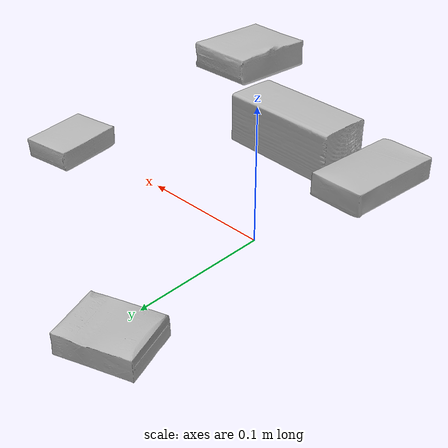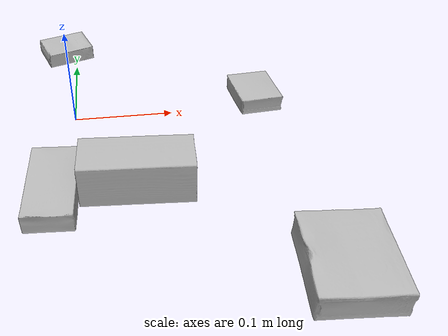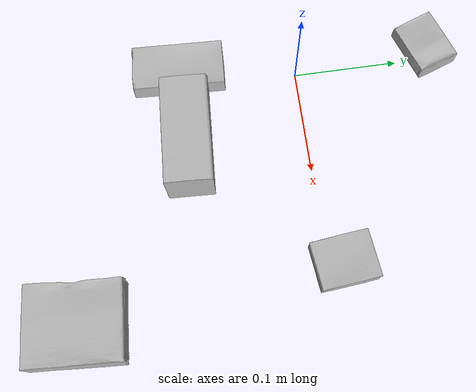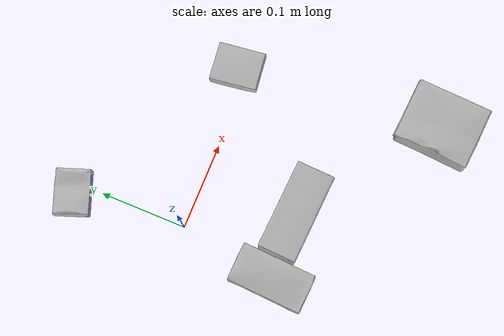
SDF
<sdf version="1.4">
  <world name="default">
    <light name="light1" type="point">
      <pose>0 0 1 0 0 0</pose>
      <diffuse>3 3 3 1</diffuse>
      <specular>3 3 3 1</specular>
    </light>
    <light name="light2" type="point">
      <pose>0 0.5 2 0 0 0</pose>
      <diffuse>1 1 1 1</diffuse>
      <specular>1 1 1 1</specular>
    </light>
    <light name="light3" type="point">
      <pose>0 0.5 2 0 0 0</pose>
      <diffuse>3 3 3 1</diffuse>
      <specular>3 3 3 1</specular>
    </light>
    <scene>
      <ambient>0.7 0.7 0.7</ambient>
    </scene>
    <model name="box1">
      <link name="link_box1">
        <collision name="default">
          <geometry>
            <mesh>
              <uri>model://gelatin_box/collision_meshes/collision.obj</uri>
              <scale>1.0 1.0 1.0</scale>
            </mesh>
          </geometry>
          <surface>
            <friction>
              <ode>
                <mu>0.5</mu>
                <mu2>0.5</mu2>
              </ode>
            </friction>
          <contact>
        <ode>
            <max_vel>0</max_vel>
            <min_depth>0.0001</min_depth>
            <kp>1e8</kp>
        </ode>
    </contact></surface>
        </collision>
        <visual name="default">
          <geometry>
            <mesh>
              <uri>model://gelatin_box/visual_meshes/visual.dae</uri>
              <scale>1.0 1.0 1.0</scale>
            </mesh>
          </geometry>
        </visual>
        <inertial>
          <mass>0.2001359760761261</mass>
          <pose>0.0004319618456065655 0.00011156872642459348 -0.00036403213744051754 -0.0010503718728910522 -0.00475581915504666 0.01644056319729456</pose>
          <inertia>
            <ixx>0.00014127967</ixx>
            <iyy>0.00010091532</iyy>
            <izz>0.00021505913</izz>
            <ixy>0</ixy>
            <ixz>0</ixz>
            <iyz>0</iyz>
          </inertia>
        </inertial>
      </link>
      <pose>0.21430671215057373 -0.224519744515419 0.015168308280408382 0.005596971500174623 -0.00730397357732002 3.06990190467095</pose>
    </model>
    <model name="box2">
      <link name="link_box2">
        <collision name="default">
          <geometry>
            <mesh>
              <uri>model://cracker_box/collision_meshes/collision.obj</uri>
              <scale>0.25 0.25 0.25</scale>
            </mesh>
          </geometry>
          <surface>
            <friction>
              <ode>
                <mu>0.5</mu>
                <mu2>0.5</mu2>
              </ode>
            </friction>
          <contact>
        <ode>
            <max_vel>0</max_vel>
            <min_depth>0.0001</min_depth>
            <kp>1e8</kp>
        </ode>
    </contact></surface>
        </collision>
        <visual name="default">
          <geometry>
            <mesh>
              <uri>model://cracker_box/visual_meshes/visual.dae</uri>
              <scale>0.25 0.25 0.25</scale>
            </mesh>
          </geometry>
        </visual>
        <inertial>
          <mass>0.052757441997528076</mass>
          <pose>0.00023660421720705926 6.358561950037256e-05 -0.0004257383698131889 -0.0003162076882876523 -0.011106491463043667 0.002546795002652857</pose>
          <inertia>
            <ixx>8.38696e-06</ixx>
            <iyy>1.384852e-05</iyy>
            <izz>1.9763109e-05</izz>
            <ixy>0</ixy>
            <ixz>0</ixz>
            <iyz>0</iyz>
          </inertia>
        </inertial>
      </link>
      <pose>-0.011887858621776104 0.1298324465751648 0.009120453149080276 -0.01178796827708772 -0.007367134787094615 -2.8008384061698304</pose>
    </model>
    <model name="box3">
      <link name="link_box3">
        <collision name="default">
          <geometry>
            <mesh>
              <uri>model://wood_block/collision_meshes/collision.obj</uri>
              <scale>0.5 0.5 0.5</scale>
            </mesh>
          </geometry>
          <surface>
            <friction>
              <ode>
                <mu>0.5</mu>
                <mu2>0.5</mu2>
              </ode>
            </friction>
          <contact>
        <ode>
            <max_vel>0</max_vel>
            <min_depth>0.0001</min_depth>
            <kp>1e8</kp>
        </ode>
    </contact></surface>
        </collision>
        <visual name="default">
          <geometry>
            <mesh>
              <uri>model://wood_block/visual_meshes/visual.dae</uri>
              <scale>0.5 0.5 0.5</scale>
            </mesh>
          </geometry>
        </visual>
        <inertial>
          <mass>0.15567830204963684</mass>
          <pose>-2.9066577553749084e-06 -0.000285404734313488 0.00013204292918089777 -0.052210429644919926 -0.005192696852900695 -0.006861378081336091</pose>
          <inertia>
            <ixx>5.2080282e-05</ixx>
            <iyy>0.00016452163</iyy>
            <izz>0.00016390622</izz>
            <ixy>0</ixy>
            <ixz>0</ixz>
            <iyz>0</iyz>
          </inertia>
        </inertial>
      </link>
      <pose>0.05805458500981331 -0.11069285124540329 0.022629283368587494 -0.005209105767496348 0.005709704919206675 3.0877614704963623</pose>
    </model>
    <model name="box4">
      <link name="link_box4">
        <collision name="default">
          <geometry>
            <mesh>
              <uri>model://pudding_box/collision_meshes/collision.obj</uri>
              <scale>0.5 0.5 0.5</scale>
            </mesh>
          </geometry>
          <surface>
            <friction>
              <ode>
                <mu>0.5</mu>
                <mu2>0.5</mu2>
              </ode>
            </friction>
          <contact>
        <ode>
            <max_vel>0</max_vel>
            <min_depth>0.0001</min_depth>
            <kp>1e8</kp>
        </ode>
    </contact></surface>
        </collision>
        <visual name="default">
          <geometry>
            <mesh>
              <uri>model://pudding_box/visual_meshes/visual.dae</uri>
              <scale>0.5 0.5 0.5</scale>
            </mesh>
          </geometry>
        </visual>
        <inertial>
          <mass>0.0498165600001812</mass>
          <pose>0.00024474109522998333 0.00040339428232982755 -0.0002594413817860186 0.00521310227074754 -0.006603796865596143 0.02007982702575369</pose>
          <inertia>
            <ixx>1.4078764e-05</ixx>
            <iyy>9.472293e-06</iyy>
            <izz>2.0790974e-05</izz>
            <ixy>0</ixy>
            <ixz>0</ixz>
            <iyz>0</iyz>
          </inertia>
        </inertial>
      </link>
      <pose>0.19073250889778137 0.014027178287506104 0.009862902574241161 0.022348574273599674 -0.011391729549137388 -3.02945864442882</pose>
    </model>
    <model name="box5">
      <link name="link_box5">
        <collision name="default">
          <geometry>
            <mesh>
              <uri>model://sugar_box/collision_meshes/collision.obj</uri>
              <scale>0.5 0.5 0.5</scale>
            </mesh>
          </geometry>
          <surface>
            <friction>
              <ode>
                <mu>0.5</mu>
                <mu2>0.5</mu2>
              </ode>
            </friction>
          <contact>
        <ode>
            <max_vel>0</max_vel>
            <min_depth>0.0001</min_depth>
            <kp>1e8</kp>
        </ode>
    </contact></surface>
        </collision>
        <visual name="default">
          <geometry>
            <mesh>
              <uri>model://sugar_box/visual_meshes/visual.dae</uri>
              <scale>0.5 0.5 0.5</scale>
            </mesh>
          </geometry>
        </visual>
        <inertial>
          <mass>0.08508674055337906</mass>
          <pose>0.0005171863595023751 1.924554817378521e-05 -0.00018182402709499002 -0.0004046257768003499 0.0010506634050152445 0.002615378556389427</pose>
          <inertia>
            <ixx>1.7723507e-05</ixx>
            <iyy>5.7286023e-05</iyy>
            <izz>6.85782e-05</izz>
            <ixy>0</ixy>
            <ixz>0</ixz>
            <iyz>0</iyz>
          </inertia>
        </inertial>
      </link>
      <pose>-0.0171207245439291 -0.11202657222747803 0.01139939296990633 0.000691304892403249 -0.023415264516113362 1.5109668310634938</pose>
    </model>
  <physics type="ode">
      <max_contacts>50</max_contacts>
      <ode>
        <solver>
          <type>quick</type>
          <iters>75</iters>
        </solver>
        <constraints>
          <contact_max_correcting_vel>0</contact_max_correcting_vel>
          <contact_surface_layer>0</contact_surface_layer>
        </constraints>
      </ode>
    </physics></world>
</sdf>
